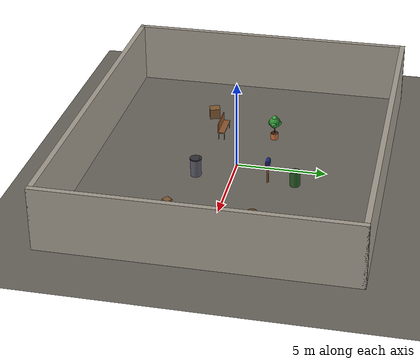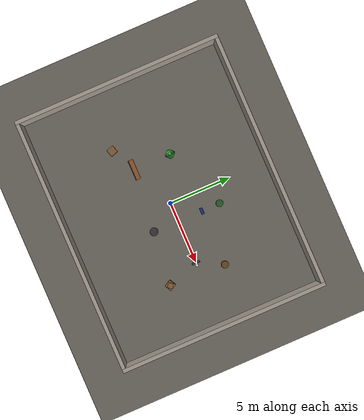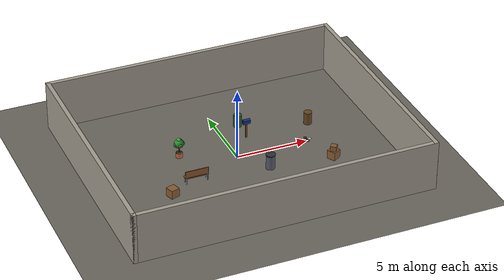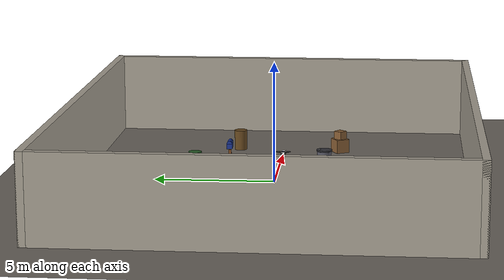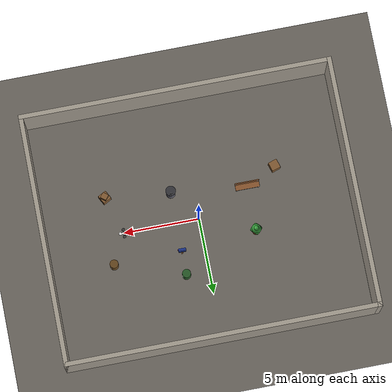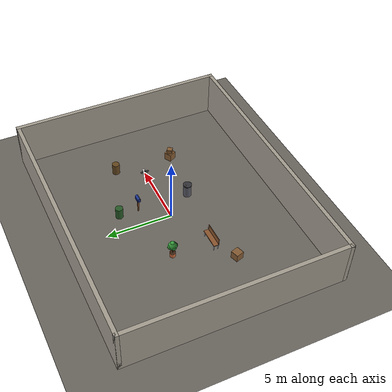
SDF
<sdf version="1.9">
 <world name="recon_world">
  <plugin filename="gz-sim-physics-system" name="gz::sim::systems::Physics"/>
  <plugin filename="gz-sim-scene-broadcaster-system" name="gz::sim::systems::SceneBroadcaster"/>
  <plugin filename="gz-sim-user-commands-system" name="gz::sim::systems::UserCommands"/>
  <plugin filename="gz-sim-sensors-system" name="gz::sim::systems::Sensors">
   <render_engine>ogre2</render_engine>
  </plugin>
  <plugin filename="gz-sim-imu-system" name="gz::sim::systems::Imu"/>
  <scene>
   <ambient>0.38 0.38 0.40 1</ambient>
   <background>0.22 0.24 0.28 1</background>
   <shadows>true</shadows>
  </scene>
  <light type="directional" name="sun">
   <pose>0 0 10 0 0.3 0.5</pose>
   <diffuse>1.0 0.95 0.85 1</diffuse>
   <specular>0.45 0.42 0.38 1</specular>
   <direction>-0.4 0.2 -0.9</direction>
  </light>
  <light type="point" name="fill_left">
   <pose>-4 0 3.0 0 0 0</pose>
   <diffuse>0.4 0.45 0.5 1</diffuse>
   <specular>0.0 0.0 0.0 1</specular>
   <attenuation><range>12</range><linear>0.1</linear></attenuation>
   <cast_shadows>false</cast_shadows>
  </light>
  <light type="point" name="fill_right">
   <pose>5 0 3.0 0 0 0</pose>
   <diffuse>0.4 0.42 0.45 1</diffuse>
   <specular>0.0 0.0 0.0 1</specular>
   <attenuation><range>12</range><linear>0.1</linear></attenuation>
   <cast_shadows>false</cast_shadows>
  </light>
  <model name="ground_plane">
   <static>true</static>
   <link name="link">
    <collision name="col">
     <geometry><plane><normal>0 0 1</normal><size>100 100</size></plane></geometry>
    </collision>
    <visual name="vis">
     <geometry><plane><normal>0 0 1</normal><size>100 100</size></plane></geometry>
     <material>
      <ambient>0.32 0.30 0.28 1</ambient>
      <diffuse>0.42 0.40 0.37 1</diffuse>
      <specular>0.03 0.03 0.03 1</specular>
     </material>
    </visual>
   </link>
  </model>
  <model name="wall_east">
   <static>true</static>
   <pose>10.15 0 1.75 0 0 0</pose>
   <link name="link">
    <collision name="col"><geometry><box><size>0.30 16.60 3.50</size></box></geometry></collision>
    <visual name="vis">
     <geometry><box><size>0.30 16.60 3.50</size></box></geometry>
     <material>
      <ambient>0.52 0.50 0.47 1</ambient>
      <diffuse>0.65 0.62 0.57 1</diffuse>
      <specular>0.04 0.04 0.04 1</specular>
     </material>
    </visual>
   </link>
  </model>
  <model name="wall_west">
   <static>true</static>
   <pose>-10.15 0 1.75 0 0 0</pose>
   <link name="link">
    <collision name="col"><geometry><box><size>0.30 16.60 3.50</size></box></geometry></collision>
    <visual name="vis">
     <geometry><box><size>0.30 16.60 3.50</size></box></geometry>
     <material>
      <ambient>0.52 0.50 0.47 1</ambient>
      <diffuse>0.65 0.62 0.57 1</diffuse>
      <specular>0.04 0.04 0.04 1</specular>
     </material>
    </visual>
   </link>
  </model>
  <model name="wall_north">
   <static>true</static>
   <pose>0 8.15 1.75 0 0 0</pose>
   <link name="link">
    <collision name="col"><geometry><box><size>20.60 0.30 3.50</size></box></geometry></collision>
    <visual name="vis">
     <geometry><box><size>20.60 0.30 3.50</size></box></geometry>
     <material>
      <ambient>0.52 0.50 0.47 1</ambient>
      <diffuse>0.65 0.62 0.57 1</diffuse>
      <specular>0.04 0.04 0.04 1</specular>
     </material>
    </visual>
   </link>
  </model>
  <model name="wall_south">
   <static>true</static>
   <pose>0 -8.15 1.75 0 0 0</pose>
   <link name="link">
    <collision name="col"><geometry><box><size>20.60 0.30 3.50</size></box></geometry></collision>
    <visual name="vis">
     <geometry><box><size>20.60 0.30 3.50</size></box></geometry>
     <material>
      <ambient>0.52 0.50 0.47 1</ambient>
      <diffuse>0.65 0.62 0.57 1</diffuse>
      <specular>0.04 0.04 0.04 1</specular>
     </material>
    </visual>
   </link>
  </model>
  <model name="barrel_target">
   <static>true</static>
   <pose>1.5 3.5 0.44 0 0 0</pose>
   <link name="link">
    <collision name="col">
     <geometry><cylinder><radius>0.28</radius><length>0.88</length></cylinder></geometry>
    </collision>
    <visual name="vis">
     <geometry><cylinder><radius>0.28</radius><length>0.88</length></cylinder></geometry>
     <material>
      <ambient>0.10 0.25 0.10 1</ambient>
      <diffuse>0.15 0.35 0.15 1</diffuse>
      <specular>0.15 0.20 0.15 1</specular>
     </material>
    </visual>
   </link>
  </model>
  <model name="crate_target">
   <static>true</static>
   <pose>-5.5 -2.5 0.30 0 0 0.3</pose>
   <link name="link">
    <collision name="col"><geometry><box><size>0.60 0.60 0.60</size></box></geometry></collision>
    <visual name="vis">
     <geometry><box><size>0.60 0.60 0.60</size></box></geometry>
     <material>
      <ambient>0.42 0.28 0.14 1</ambient>
      <diffuse>0.52 0.36 0.20 1</diffuse>
      <specular>0.04 0.03 0.02 1</specular>
     </material>
    </visual>
   </link>
  </model>
  <model name="potted_plant">
   <static>true</static>
   <pose>-3.5 1.5 0 0 0 0</pose>
   <link name="link">
    <collision name="col_pot">
     <pose>0 0 0.18 0 0 0</pose>
     <geometry><cylinder><radius>0.22</radius><length>0.36</length></cylinder></geometry>
    </collision>
    <visual name="vis_pot">
     <pose>0 0 0.18 0 0 0</pose>
     <geometry><cylinder><radius>0.22</radius><length>0.36</length></cylinder></geometry>
     <material>
      <ambient>0.55 0.28 0.16 1</ambient>
      <diffuse>0.78 0.42 0.24 1</diffuse>
      <specular>0.06 0.03 0.02 1</specular>
     </material>
    </visual>
    <visual name="vis_soil">
     <pose>0 0 0.365 0 0 0</pose>
     <geometry><cylinder><radius>0.20</radius><length>0.02</length></cylinder></geometry>
     <material><ambient>0.18 0.10 0.05 1</ambient><diffuse>0.22 0.13 0.06 1</diffuse></material>
    </visual>
    <visual name="vis_trunk">
     <pose>0 0 0.65 0 0 0</pose>
     <geometry><cylinder><radius>0.030</radius><length>0.55</length></cylinder></geometry>
     <material><ambient>0.30 0.18 0.08 1</ambient><diffuse>0.40 0.25 0.12 1</diffuse></material>
    </visual>
    <visual name="vis_canopy">
     <pose>0 0 1.05 0 0 0</pose>
     <geometry><sphere><radius>0.32</radius></sphere></geometry>
     <material>
      <ambient>0.08 0.30 0.10 1</ambient>
      <diffuse>0.18 0.55 0.20 1</diffuse>
      <specular>0.05 0.10 0.05 1</specular>
     </material>
    </visual>
    <visual name="vis_leaf_n">
     <pose>0.20 0.00 1.00 0 0 0</pose>
     <geometry><sphere><radius>0.18</radius></sphere></geometry>
     <material><ambient>0.10 0.34 0.12 1</ambient><diffuse>0.22 0.62 0.24 1</diffuse></material>
    </visual>
    <visual name="vis_leaf_s">
     <pose>-0.20 0.00 1.00 0 0 0</pose>
     <geometry><sphere><radius>0.17</radius></sphere></geometry>
     <material><ambient>0.06 0.28 0.10 1</ambient><diffuse>0.14 0.52 0.18 1</diffuse></material>
    </visual>
    <visual name="vis_leaf_e">
     <pose>0.00 0.20 1.02 0 0 0</pose>
     <geometry><sphere><radius>0.18</radius></sphere></geometry>
     <material><ambient>0.10 0.36 0.10 1</ambient><diffuse>0.20 0.60 0.22 1</diffuse></material>
    </visual>
    <visual name="vis_leaf_w">
     <pose>0.00 -0.20 1.02 0 0 0</pose>
     <geometry><sphere><radius>0.17</radius></sphere></geometry>
     <material><ambient>0.08 0.32 0.10 1</ambient><diffuse>0.18 0.55 0.18 1</diffuse></material>
    </visual>
    <visual name="vis_leaf_top">
     <pose>0.00 0.00 1.30 0 0 0</pose>
     <geometry><sphere><radius>0.16</radius></sphere></geometry>
     <material><ambient>0.12 0.38 0.14 1</ambient><diffuse>0.24 0.66 0.26 1</diffuse></material>
    </visual>
    <visual name="vis_leaf_bot">
     <pose>0.00 0.00 0.85 0 0 0</pose>
     <geometry><sphere><radius>0.15</radius></sphere></geometry>
     <material><ambient>0.06 0.26 0.08 1</ambient><diffuse>0.14 0.48 0.16 1</diffuse></material>
    </visual>
    <visual name="vis_blade_1">
     <pose>0.32  0.00 1.05 0 0.4 0</pose>
     <geometry><box><size>0.18 0.05 0.01</size></box></geometry>
     <material><ambient>0.10 0.36 0.10 1</ambient><diffuse>0.22 0.62 0.22 1</diffuse></material>
    </visual>
    <visual name="vis_blade_2">
     <pose>0.00  0.32 1.10 0 0.4 1.5708</pose>
     <geometry><box><size>0.18 0.05 0.01</size></box></geometry>
     <material><ambient>0.08 0.32 0.10 1</ambient><diffuse>0.18 0.55 0.18 1</diffuse></material>
    </visual>
    <visual name="vis_blade_3">
     <pose>-0.30  0.00 1.00 0 -0.4 0</pose>
     <geometry><box><size>0.18 0.05 0.01</size></box></geometry>
     <material><ambient>0.10 0.34 0.12 1</ambient><diffuse>0.22 0.60 0.24 1</diffuse></material>
    </visual>
    <visual name="vis_blade_4">
     <pose>0.00 -0.30 1.05 0 -0.4 1.5708</pose>
     <geometry><box><size>0.18 0.05 0.01</size></box></geometry>
     <material><ambient>0.08 0.30 0.10 1</ambient><diffuse>0.18 0.52 0.20 1</diffuse></material>
    </visual>
   </link>
  </model>
  <model name="park_bench">
   <static>true</static>
   <pose>-3.5 -1.5 0 0 0 0</pose>
   <link name="link">
    <collision name="col_seat">
     <pose>0 0 0.45 0 0 0</pose>
     <geometry><box><size>1.60 0.40 0.06</size></box></geometry>
    </collision>
    <visual name="vis_seat">
     <pose>0 0 0.45 0 0 0</pose>
     <geometry><box><size>1.60 0.40 0.06</size></box></geometry>
     <material>
      <ambient>0.30 0.18 0.10 1</ambient>
      <diffuse>0.55 0.34 0.18 1</diffuse>
      <specular>0.05 0.03 0.02 1</specular>
     </material>
    </visual>
    <visual name="vis_back">
     <pose>0 -0.18 0.75 0 0 0</pose>
     <geometry><box><size>1.60 0.05 0.45</size></box></geometry>
     <material><ambient>0.30 0.18 0.10 1</ambient><diffuse>0.55 0.34 0.18 1</diffuse></material>
    </visual>
    <visual name="vis_leg_lf">
     <pose>-0.72 0.16 0.225 0 0 0</pose>
     <geometry><box><size>0.05 0.05 0.45</size></box></geometry>
     <material><ambient>0.05 0.05 0.06 1</ambient><diffuse>0.10 0.10 0.12 1</diffuse></material>
    </visual>
    <visual name="vis_leg_rf">
     <pose>0.72 0.16 0.225 0 0 0</pose>
     <geometry><box><size>0.05 0.05 0.45</size></box></geometry>
     <material><ambient>0.05 0.05 0.06 1</ambient><diffuse>0.10 0.10 0.12 1</diffuse></material>
    </visual>
    <visual name="vis_leg_lb">
     <pose>-0.72 -0.16 0.225 0 0 0</pose>
     <geometry><box><size>0.05 0.05 0.45</size></box></geometry>
     <material><ambient>0.05 0.05 0.06 1</ambient><diffuse>0.10 0.10 0.12 1</diffuse></material>
    </visual>
    <visual name="vis_leg_rb">
     <pose>0.72 -0.16 0.225 0 0 0</pose>
     <geometry><box><size>0.05 0.05 0.45</size></box></geometry>
     <material><ambient>0.05 0.05 0.06 1</ambient><diffuse>0.10 0.10 0.12 1</diffuse></material>
    </visual>
    <visual name="vis_back_lup">
     <pose>-0.72 -0.18 0.65 0 0 0</pose>
     <geometry><box><size>0.05 0.05 0.50</size></box></geometry>
     <material><ambient>0.05 0.05 0.06 1</ambient><diffuse>0.10 0.10 0.12 1</diffuse></material>
    </visual>
    <visual name="vis_back_rup">
     <pose>0.72 -0.18 0.65 0 0 0</pose>
     <geometry><box><size>0.05 0.05 0.50</size></box></geometry>
     <material><ambient>0.05 0.05 0.06 1</ambient><diffuse>0.10 0.10 0.12 1</diffuse></material>
    </visual>
   </link>
  </model>
  <model name="trash_bin">
   <static>true</static>
   <pose>1.5 -2.0 0 0 0 0</pose>
   <link name="link">
    <collision name="col_body">
     <pose>0 0 0.5 0 0 0</pose>
     <geometry><cylinder><radius>0.30</radius><length>1.00</length></cylinder></geometry>
    </collision>
    <visual name="vis_body">
     <pose>0 0 0.5 0 0 0</pose>
     <geometry><cylinder><radius>0.30</radius><length>1.00</length></cylinder></geometry>
     <material>
      <ambient>0.20 0.20 0.22 1</ambient>
      <diffuse>0.35 0.35 0.40 1</diffuse>
      <specular>0.10 0.10 0.10 1</specular>
     </material>
    </visual>
    <visual name="vis_lid">
     <pose>0 0 1.04 0 0 0</pose>
     <geometry><cylinder><radius>0.33</radius><length>0.05</length></cylinder></geometry>
     <material><ambient>0.10 0.10 0.12 1</ambient><diffuse>0.20 0.20 0.22 1</diffuse></material>
    </visual>
    <visual name="vis_opening">
     <pose>0 0.18 1.07 0 0 0</pose>
     <geometry><box><size>0.20 0.05 0.04</size></box></geometry>
     <material><ambient>0.02 0.02 0.02 1</ambient><diffuse>0.04 0.04 0.04 1</diffuse></material>
    </visual>
   </link>
  </model>
  <model name="mailbox">
   <static>true</static>
   <pose>1.5 2.0 0 0 0 0</pose>
   <link name="link">
    <collision name="col_post">
     <pose>0 0 0.5 0 0 0</pose>
     <geometry><box><size>0.10 0.10 1.00</size></box></geometry>
    </collision>
    <visual name="vis_post">
     <pose>0 0 0.5 0 0 0</pose>
     <geometry><box><size>0.10 0.10 1.00</size></box></geometry>
     <material><ambient>0.30 0.18 0.08 1</ambient><diffuse>0.50 0.30 0.14 1</diffuse></material>
    </visual>
    <visual name="vis_body">
     <pose>0 0 1.18 0 0 0</pose>
     <geometry><box><size>0.50 0.22 0.22</size></box></geometry>
     <material>
      <ambient>0.05 0.10 0.30 1</ambient>
      <diffuse>0.10 0.20 0.55 1</diffuse>
      <specular>0.10 0.10 0.20 1</specular>
     </material>
    </visual>
    <visual name="vis_top">
     <pose>0 0 1.30 1.5708 0 1.5708</pose>
     <geometry><cylinder><radius>0.11</radius><length>0.50</length></cylinder></geometry>
     <material>
      <ambient>0.05 0.10 0.30 1</ambient>
      <diffuse>0.10 0.20 0.55 1</diffuse>
      <specular>0.10 0.10 0.20 1</specular>
     </material>
    </visual>
    <visual name="vis_flag">
     <pose>0.27 -0.05 1.20 0 0 0</pose>
     <geometry><box><size>0.02 0.06 0.18</size></box></geometry>
     <material><ambient>0.50 0.05 0.05 1</ambient><diffuse>0.85 0.10 0.10 1</diffuse></material>
    </visual>
   </link>
  </model>
  <model name="barrel_drone_n">
   <static>true</static>
   <pose>6.0 2.0 0.44 0 0 0</pose>
   <link name="link">
    <collision name="col">
     <geometry><cylinder><radius>0.28</radius><length>0.88</length></cylinder></geometry>
    </collision>
    <visual name="vis">
     <geometry><cylinder><radius>0.28</radius><length>0.88</length></cylinder></geometry>
     <material>
      <ambient>0.28 0.18 0.08 1</ambient>
      <diffuse>0.40 0.28 0.12 1</diffuse>
      <specular>0.20 0.15 0.08 1</specular>
     </material>
    </visual>
   </link>
  </model>
  <model name="crate_drone_lo">
   <static>true</static>
   <pose>5.8 -2.5 0.30 0 0 0.5</pose>
   <link name="link">
    <collision name="col"><geometry><box><size>0.60 0.60 0.60</size></box></geometry></collision>
    <visual name="vis">
     <geometry><box><size>0.60 0.60 0.60</size></box></geometry>
     <material><ambient>0.42 0.28 0.14 1</ambient><diffuse>0.52 0.36 0.20 1</diffuse></material>
    </visual>
   </link>
  </model>
  <model name="crate_drone_hi">
   <static>true</static>
   <pose>5.8 -2.5 0.75 0 0 0.9</pose>
   <link name="link">
    <collision name="col"><geometry><box><size>0.40 0.40 0.40</size></box></geometry></collision>
    <visual name="vis">
     <geometry><box><size>0.40 0.40 0.40</size></box></geometry>
     <material><ambient>0.42 0.28 0.14 1</ambient><diffuse>0.52 0.36 0.20 1</diffuse></material>
    </visual>
   </link>
  </model>
  <model name="x3">
   <pose>5 0 0.11 0 0 3.14159</pose>
   <link name="base_link">
    <gravity>false</gravity>
    <inertial><mass>1.5</mass><inertia><ixx>0.03</ixx><iyy>0.03</iyy><izz>0.05</izz></inertia></inertial>
    <visual name="body_top">
     <pose>0 0 0.015 0 0 0</pose>
     <geometry><box><size>0.11 0.11 0.025</size></box></geometry>
     <material>
      <ambient>0.08 0.08 0.08 1</ambient>
      <diffuse>0.15 0.15 0.15 1</diffuse>
      <specular>0.3 0.3 0.3 1</specular>
     </material>
    </visual>
    <visual name="body_bottom">
     <pose>0 0 -0.010 0 0 0</pose>
     <geometry><box><size>0.09 0.09 0.018</size></box></geometry>
     <material>
      <ambient>0.08 0.08 0.08 1</ambient>
      <diffuse>0.15 0.15 0.15 1</diffuse>
      <specular>0.3 0.3 0.3 1</specular>
     </material>
    </visual>
    <visual name="arm_x">
     <pose>0 0 -0.002 0 0 0</pose>
     <geometry><box><size>0.46 0.028 0.016</size></box></geometry>
     <material><ambient>0.12 0.12 0.12 1</ambient><diffuse>0.20 0.20 0.20 1</diffuse></material>
    </visual>
    <visual name="arm_y">
     <pose>0 0 -0.002 0 0 0</pose>
     <geometry><box><size>0.028 0.46 0.016</size></box></geometry>
     <material><ambient>0.12 0.12 0.12 1</ambient><diffuse>0.20 0.20 0.20 1</diffuse></material>
    </visual>
    <visual name="motor_px">
     <pose>0.23 0 0.005 0 0 0</pose>
     <geometry><cylinder><radius>0.022</radius><length>0.030</length></cylinder></geometry>
     <material><ambient>0.05 0.05 0.05 1</ambient><diffuse>0.10 0.10 0.10 1</diffuse></material>
    </visual>
    <visual name="motor_nx">
     <pose>-0.23 0 0.005 0 0 0</pose>
     <geometry><cylinder><radius>0.022</radius><length>0.030</length></cylinder></geometry>
     <material><ambient>0.05 0.05 0.05 1</ambient><diffuse>0.10 0.10 0.10 1</diffuse></material>
    </visual>
    <visual name="motor_py">
     <pose>0 0.23 0.005 0 0 0</pose>
     <geometry><cylinder><radius>0.022</radius><length>0.030</length></cylinder></geometry>
     <material><ambient>0.05 0.05 0.05 1</ambient><diffuse>0.10 0.10 0.10 1</diffuse></material>
    </visual>
    <visual name="motor_ny">
     <pose>0 -0.23 0.005 0 0 0</pose>
     <geometry><cylinder><radius>0.022</radius><length>0.030</length></cylinder></geometry>
     <material><ambient>0.05 0.05 0.05 1</ambient><diffuse>0.10 0.10 0.10 1</diffuse></material>
    </visual>
    <visual name="prop_px">
     <pose>0.23 0 0.026 0 0 0</pose>
     <geometry><cylinder><radius>0.105</radius><length>0.006</length></cylinder></geometry>
     <material><ambient>0.85 0.85 0.85 1</ambient><diffuse>0.90 0.90 0.90 1</diffuse></material>
    </visual>
    <visual name="prop_nx">
     <pose>-0.23 0 0.026 0 0 0</pose>
     <geometry><cylinder><radius>0.105</radius><length>0.006</length></cylinder></geometry>
     <material><ambient>0.85 0.85 0.85 1</ambient><diffuse>0.90 0.90 0.90 1</diffuse></material>
    </visual>
    <visual name="prop_py">
     <pose>0 0.23 0.026 0 0 0</pose>
     <geometry><cylinder><radius>0.105</radius><length>0.006</length></cylinder></geometry>
     <material><ambient>0.15 0.15 0.15 1</ambient><diffuse>0.22 0.22 0.22 1</diffuse></material>
    </visual>
    <visual name="prop_ny">
     <pose>0 -0.23 0.026 0 0 0</pose>
     <geometry><cylinder><radius>0.105</radius><length>0.006</length></cylinder></geometry>
     <material><ambient>0.15 0.15 0.15 1</ambient><diffuse>0.22 0.22 0.22 1</diffuse></material>
    </visual>
    <visual name="leg_fl">
     <pose>0.13 0.10 -0.045 0 0 0</pose>
     <geometry><cylinder><radius>0.007</radius><length>0.065</length></cylinder></geometry>
     <material><ambient>0.20 0.20 0.20 1</ambient><diffuse>0.28 0.28 0.28 1</diffuse></material>
    </visual>
    <visual name="leg_fr">
     <pose>0.13 -0.10 -0.045 0 0 0</pose>
     <geometry><cylinder><radius>0.007</radius><length>0.065</length></cylinder></geometry>
     <material><ambient>0.20 0.20 0.20 1</ambient><diffuse>0.28 0.28 0.28 1</diffuse></material>
    </visual>
    <visual name="leg_bl">
     <pose>-0.13 0.10 -0.045 0 0 0</pose>
     <geometry><cylinder><radius>0.007</radius><length>0.065</length></cylinder></geometry>
     <material><ambient>0.20 0.20 0.20 1</ambient><diffuse>0.28 0.28 0.28 1</diffuse></material>
    </visual>
    <visual name="leg_br">
     <pose>-0.13 -0.10 -0.045 0 0 0</pose>
     <geometry><cylinder><radius>0.007</radius><length>0.065</length></cylinder></geometry>
     <material><ambient>0.20 0.20 0.20 1</ambient><diffuse>0.28 0.28 0.28 1</diffuse></material>
    </visual>
    <visual name="skid_left">
     <pose>0 0.10 -0.073 0 0 0</pose>
     <geometry><box><size>0.28 0.012 0.010</size></box></geometry>
     <material><ambient>0.20 0.20 0.20 1</ambient><diffuse>0.28 0.28 0.28 1</diffuse></material>
    </visual>
    <visual name="skid_right">
     <pose>0 -0.10 -0.073 0 0 0</pose>
     <geometry><box><size>0.28 0.012 0.010</size></box></geometry>
     <material><ambient>0.20 0.20 0.20 1</ambient><diffuse>0.28 0.28 0.28 1</diffuse></material>
    </visual>
    <visual name="cam_gimbal">
     <pose>0.10 0 -0.018 0 0.5236 0</pose>
     <geometry><box><size>0.035 0.030 0.025</size></box></geometry>
     <material><ambient>0.8 0.35 0.0 1</ambient><diffuse>1.0 0.45 0.0 1</diffuse></material>
    </visual>
    <visual name="lidar_housing">
     <pose>0 0 0.038 0 0 0</pose>
     <geometry><cylinder><radius>0.030</radius><length>0.020</length></cylinder></geometry>
     <material><ambient>0.05 0.05 0.35 1</ambient><diffuse>0.08 0.08 0.55 1</diffuse></material>
    </visual>
    <sensor name="camera" type="camera">
     <pose>0.1 0 -0.05 0 0.5236 0</pose>
     <camera>
      <horizontal_fov>1.5708</horizontal_fov>
      <image><width>1280</width><height>720</height><format>RGB_INT8</format></image>
      <clip><near>0.05</near><far>100</far></clip>
     </camera>
     <update_rate>15</update_rate>
     <always_on>true</always_on>
     <visualize>false</visualize>
    </sensor>
    <sensor name="depth_camera" type="depth_camera">
     <pose>0.1 0 -0.05 0 0.5236 0</pose>
     <camera>
      <horizontal_fov>1.5708</horizontal_fov>
      <image><width>640</width><height>480</height><format>R_FLOAT32</format></image>
      <clip><near>0.05</near><far>20</far></clip>
     </camera>
     <update_rate>10</update_rate>
     <always_on>true</always_on>
     <visualize>false</visualize>
    </sensor>
    <sensor name="lidar" type="gpu_lidar">
     <pose>0 0 0.05 0 0 0</pose>
     <lidar>
      <scan>
       <horizontal>
        <samples>360</samples>
        <resolution>1</resolution>
        <min_angle>-3.14159</min_angle>
        <max_angle>3.14159</max_angle>
       </horizontal>
       <vertical>
        <samples>16</samples>
        <resolution>1</resolution>
        <min_angle>-0.2618</min_angle>
        <max_angle>0.2618</max_angle>
       </vertical>
      </scan>
      <range><min>0.10</min><max>30.0</max><resolution>0.01</resolution></range>
      <noise><type>gaussian</type><mean>0.0</mean><stddev>0.01</stddev></noise>
     </lidar>
     <update_rate>10</update_rate>
     <always_on>true</always_on>
     <visualize>false</visualize>
    </sensor>
    <sensor name="imu" type="imu">
     <update_rate>100</update_rate>
     <always_on>true</always_on>
     <imu>
      <angular_velocity>
       <x><noise type="gaussian"><mean>0</mean><stddev>0.0002</stddev></noise></x>
       <y><noise type="gaussian"><mean>0</mean><stddev>0.0002</stddev></noise></y>
       <z><noise type="gaussian"><mean>0</mean><stddev>0.0002</stddev></noise></z>
      </angular_velocity>
      <linear_acceleration>
       <x><noise type="gaussian"><mean>0</mean><stddev>0.017</stddev></noise></x>
       <y><noise type="gaussian"><mean>0</mean><stddev>0.017</stddev></noise></y>
       <z><noise type="gaussian"><mean>0</mean><stddev>0.017</stddev></noise></z>
      </linear_acceleration>
     </imu>
    </sensor>
   </link>
   <plugin filename="gz-sim-pose-publisher-system" name="gz::sim::systems::PosePublisher">
    <publish_model_pose>true</publish_model_pose>
    <publish_link_pose>true</publish_link_pose>
    <update_frequency>20</update_frequency>
   </plugin>
   <plugin filename="gz-sim-velocity-control-system" name="gz::sim::systems::VelocityControl"/>
  </model>
 </world>
</sdf>
